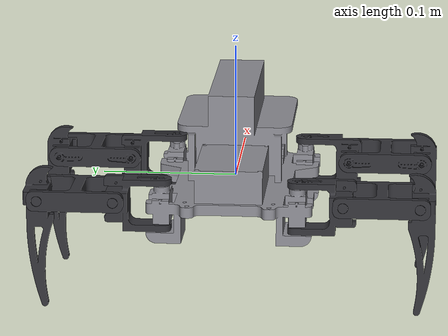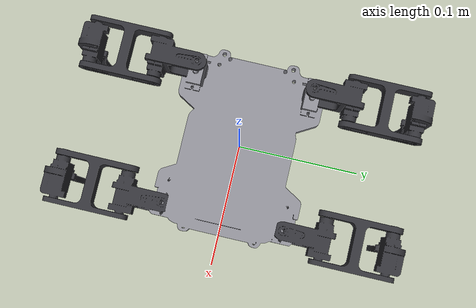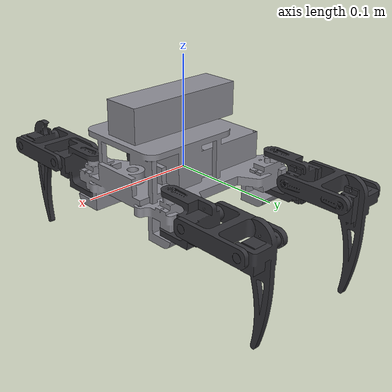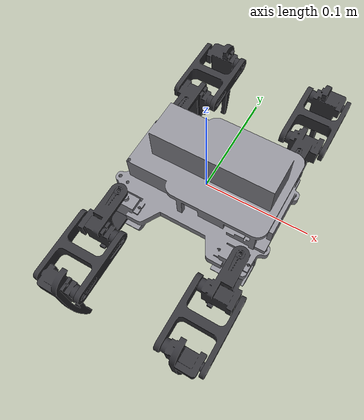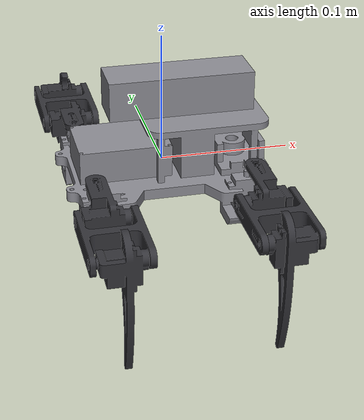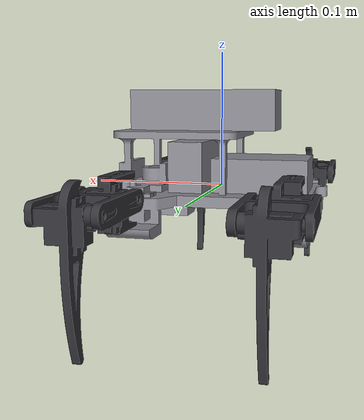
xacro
<?xml version="1.0"?>
<robot name="spidy" xmlns:xacro="http://www.ros.org/wiki/xacro">

  <!-- Where meshes live. ROS uses package://, MuJoCo/plain tools pass a folder path. -->
  <xacro:arg name="mesh_prefix" default="package://spidy_description/meshes"/>
  <xacro:property name="mesh" value="$(arg mesh_prefix)"/>

  <xacro:include filename="spidy_generated.xacro"/>

  <!-- MG90S @ 6 V: stall ~2.2 kg*cm = 0.21 N*m, ~0.08 s/60deg = 13 rad/s -->
  <xacro:property name="servo_effort"   value="0.21"/>
  <xacro:property name="servo_velocity" value="13.0"/>
  <!-- TODO: replace with real limits from your calibration (servo 0..180 deg mapped to joint angle) -->
  <xacro:property name="lim" value="${pi/2}"/>
  <xacro:property name="foot_radius" value="0.004"/>

  <material name="pla_dark"> <color rgba="0.20 0.20 0.22 1"/></material>
  <material name="pla_grey"> <color rgba="0.55 0.55 0.58 1"/></material>
  <material name="servo_blue"><color rgba="0.15 0.35 0.75 1"/></material>
  <material name="rubber">   <color rgba="0.05 0.05 0.05 1"/></material>

  <!-- Leg inertials below are the FL numbers mirrored per leg:
       mirroring x flips the sign of cx, ixy, ixz; mirroring y flips cy, ixy, iyz. -->

  <!-- ============================================================ base -->
  <link name="base_link">
    <visual>
      <geometry><mesh filename="${mesh}/base_link.stl"/></geometry>
      <material name="pla_grey"/>
    </visual>
    <!-- Collision = two boxes, not the mesh. Physics engines turn meshes into
         convex hulls anyway; boxes are faster and behave predictably. -->
    <collision>
      <origin xyz="${plate_box_xyz}" rpy="0 0 0"/>
      <geometry><box size="${plate_box_size}"/></geometry>
    </collision>
    <collision>
      <origin xyz="${stack_box_xyz}" rpy="0 0 0"/>
      <geometry><box size="${stack_box_size}"/></geometry>
    </collision>
    <inertial>
      <origin xyz="${base_cx} ${base_cy} ${base_cz}" rpy="0 0 0"/>
      <mass value="${base_mass}"/>
      <inertia ixx="${base_ixx}" iyy="${base_iyy}" izz="${base_izz}"
               ixy="${base_ixy}" ixz="${base_ixz}" iyz="${base_iyz}"/>
    </inertial>
  </link>

  <xacro:macro name="leg" params="prefix sx sy">

    <!-- hip (yaw): servo m1 is screwed to the chassis, its horn turns the coxa -->
    <joint name="${prefix}_hip" type="revolute">
      <parent link="base_link"/>
      <child  link="${prefix}_coxa"/>
      <origin xyz="${sx*hip_x} ${sy*hip_y} 0" rpy="0 0 0"/>
      <axis xyz="0 0 1"/>
      <limit lower="${-lim}" upper="${lim}" effort="${servo_effort}" velocity="${servo_velocity}"/>
    </joint>

    <link name="${prefix}_coxa">
      <visual>
        <geometry><mesh filename="${mesh}/${prefix}_coxa.stl"/></geometry>
        <material name="pla_dark"/>
      </visual>
      <inertial>
        <origin xyz="${sx*coxa_cx} ${sy*coxa_cy} ${coxa_cz}" rpy="0 0 0"/>
        <mass value="${coxa_mass}"/>
        <inertia ixx="${coxa_ixx}" iyy="${coxa_iyy}" izz="${coxa_izz}"
                 ixy="${sx*sy*coxa_ixy}" ixz="${sx*coxa_ixz}" iyz="${sy*coxa_iyz}"/>
      </inertial>
    </link>

    <!-- knee (pitch): servo m2 sits in the coxa bracket, its horn drives the femur link -->
    <joint name="${prefix}_knee" type="revolute">
      <parent link="${prefix}_coxa"/>
      <child  link="${prefix}_femur"/>
      <origin xyz="0 ${sy*coxa_len} 0" rpy="0 0 0"/>
      <axis xyz="1 0 0"/>
      <limit lower="${-lim}" upper="${lim}" effort="${servo_effort}" velocity="${servo_velocity}"/>
    </joint>

    <link name="${prefix}_femur">
      <visual>
        <geometry><mesh filename="${mesh}/${prefix}_femur.stl"/></geometry>
        <material name="pla_dark"/>
      </visual>
      <inertial>
        <origin xyz="${sx*femur_cx} ${sy*femur_cy} ${femur_cz}" rpy="0 0 0"/>
        <mass value="${femur_mass}"/>
        <inertia ixx="${femur_ixx}" iyy="${femur_iyy}" izz="${femur_izz}"
                 ixy="${sx*sy*femur_ixy}" ixz="${sx*femur_ixz}" iyz="${sy*femur_iyz}"/>
      </inertial>
    </link>

    <!-- claw: servo m3 is screwed into the claw; its horn is fixed to the femur
         link, so the servo BODY rotates with the tibia. Same joint either way. -->
    <joint name="${prefix}_claw" type="revolute">
      <parent link="${prefix}_femur"/>
      <child  link="${prefix}_tibia"/>
      <origin xyz="0 ${sy*femur_len} 0" rpy="0 0 0"/>
      <axis xyz="1 0 0"/>
      <limit lower="${-lim}" upper="${lim}" effort="${servo_effort}" velocity="${servo_velocity}"/>
    </joint>

    <link name="${prefix}_tibia">
      <visual>
        <geometry><mesh filename="${mesh}/${prefix}_tibia.stl"/></geometry>
        <material name="pla_dark"/>
      </visual>
      <!-- Only the foot tip touches the ground: one small sphere -->
      <collision>
        <origin xyz="${sx*foot_x} ${sy*foot_y} ${foot_z + foot_radius}" rpy="0 0 0"/>
        <geometry><sphere radius="${foot_radius}"/></geometry>
      </collision>
      <inertial>
        <origin xyz="${sx*tibia_cx} ${sy*tibia_cy} ${tibia_cz}" rpy="0 0 0"/>
        <mass value="${tibia_mass}"/>
        <inertia ixx="${tibia_ixx}" iyy="${tibia_iyy}" izz="${tibia_izz}"
                 ixy="${sx*sy*tibia_ixy}" ixz="${sx*tibia_ixz}" iyz="${sy*tibia_iyz}"/>
      </inertial>
    </link>

    <!-- Foot frame: massless marker at the tip. IK targets this frame. -->
    <joint name="${prefix}_foot_fixed" type="fixed">
      <parent link="${prefix}_tibia"/>
      <child  link="${prefix}_foot"/>
      <origin xyz="${sx*foot_x} ${sy*foot_y} ${foot_z}" rpy="0 0 0"/>
    </joint>
    <link name="${prefix}_foot"/>

  </xacro:macro>

  <!-- ============================================================ build it -->
  <xacro:leg prefix="fl" sx="1"  sy="1"/>
  <xacro:leg prefix="fr" sx="1"  sy="-1"/>
  <xacro:leg prefix="bl" sx="-1" sy="1"/>
  <xacro:leg prefix="br" sx="-1" sy="-1"/>

</robot>

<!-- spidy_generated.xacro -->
<!-- GENERATED by scripts/build_description.py from Fusion + config/masses.yaml. Do not hand-edit. -->
<robot xmlns:xacro="http://www.ros.org/wiki/xacro">
  <xacro:property name="hip_x" value="0.06"/>
  <xacro:property name="hip_y" value="0.05"/>
  <xacro:property name="coxa_len" value="0.0342"/>
  <xacro:property name="femur_len" value="0.0558"/>
  <xacro:property name="foot_x" value="-0.00500"/>
  <xacro:property name="foot_y" value="-0.00121"/>
  <xacro:property name="foot_z" value="-0.08890"/>
  <xacro:property name="plate_box_xyz"  value="2.86102e-09 0 -0.0179"/>
  <xacro:property name="plate_box_size" value="0.1572 0.122 0.0302"/>
  <xacro:property name="stack_box_xyz"  value="0.00411249 0 0.0347"/>
  <xacro:property name="stack_box_size" value="0.1428 0.086 0.075"/>
  <xacro:property name="base_mass" value="0.517075"/>
  <xacro:property name="base_cx" value="0.0121647"/>
  <xacro:property name="base_cy" value="-0.000138725"/>
  <xacro:property name="base_cz" value="0.0231342"/>
  <xacro:property name="base_ixx" value="8.2636e-04"/>
  <xacro:property name="base_iyy" value="1.3056e-03"/>
  <xacro:property name="base_izz" value="1.0732e-03"/>
  <xacro:property name="base_ixy" value="3.7746e-06"/>
  <xacro:property name="base_ixz" value="-4.2957e-05"/>
  <xacro:property name="base_iyz" value="-1.5498e-06"/>

  <xacro:property name="coxa_mass" value="0.0200143"/>
  <xacro:property name="coxa_cx" value="-0.00178525"/>
  <xacro:property name="coxa_cy" value="0.0295615"/>
  <xacro:property name="coxa_cz" value="-0.00439371"/>
  <xacro:property name="coxa_ixx" value="4.0522e-06"/>
  <xacro:property name="coxa_iyy" value="3.0828e-06"/>
  <xacro:property name="coxa_izz" value="3.3662e-06"/>
  <xacro:property name="coxa_ixy" value="2.0280e-07"/>
  <xacro:property name="coxa_ixz" value="1.3216e-08"/>
  <xacro:property name="coxa_iyz" value="2.5010e-07"/>

  <xacro:property name="femur_mass" value="0.00891947"/>
  <xacro:property name="femur_cx" value="-0.00630845"/>
  <xacro:property name="femur_cy" value="0.0278224"/>
  <xacro:property name="femur_cz" value="5.95122e-10"/>
  <xacro:property name="femur_ixx" value="2.7866e-06"/>
  <xacro:property name="femur_iyy" value="2.8842e-06"/>
  <xacro:property name="femur_izz" value="5.3800e-06"/>
  <xacro:property name="femur_ixy" value="1.4510e-08"/>
  <xacro:property name="femur_ixz" value="5.3652e-14"/>
  <xacro:property name="femur_iyz" value="-6.8104e-12"/>

  <xacro:property name="tibia_mass" value="0.0179021"/>
  <xacro:property name="tibia_cx" value="-0.00325911"/>
  <xacro:property name="tibia_cy" value="0.00066042"/>
  <xacro:property name="tibia_cz" value="-0.00898153"/>
  <xacro:property name="tibia_ixx" value="5.0764e-06"/>
  <xacro:property name="tibia_iyy" value="5.8392e-06"/>
  <xacro:property name="tibia_izz" value="1.3679e-06"/>
  <xacro:property name="tibia_ixy" value="-1.3773e-08"/>
  <xacro:property name="tibia_ixz" value="-1.3394e-07"/>
  <xacro:property name="tibia_iyz" value="1.1033e-07"/>

</robot>
